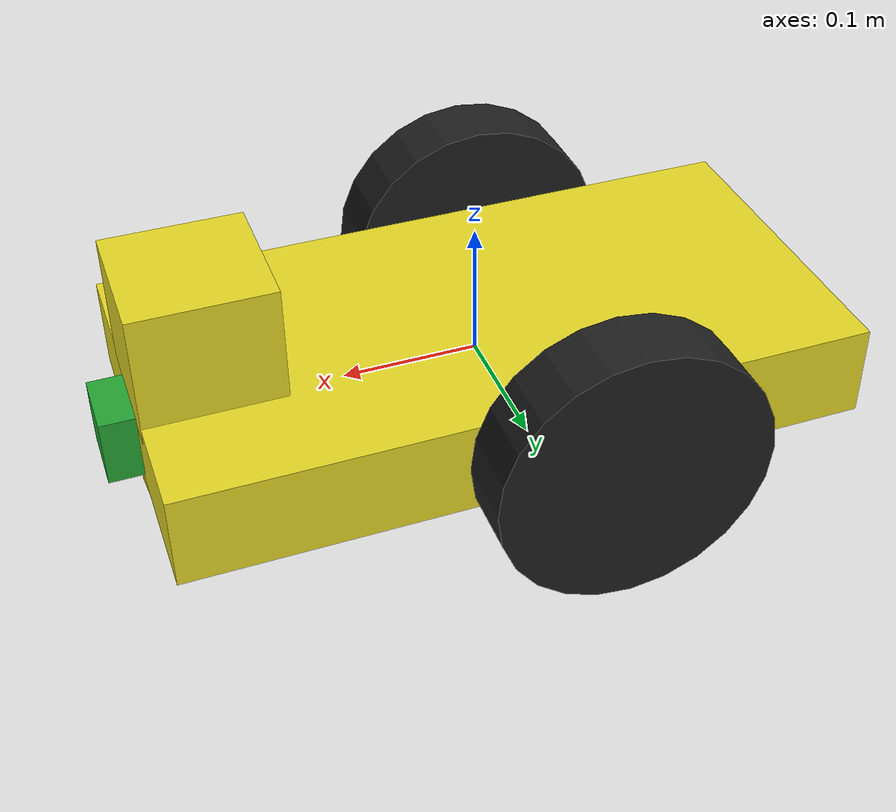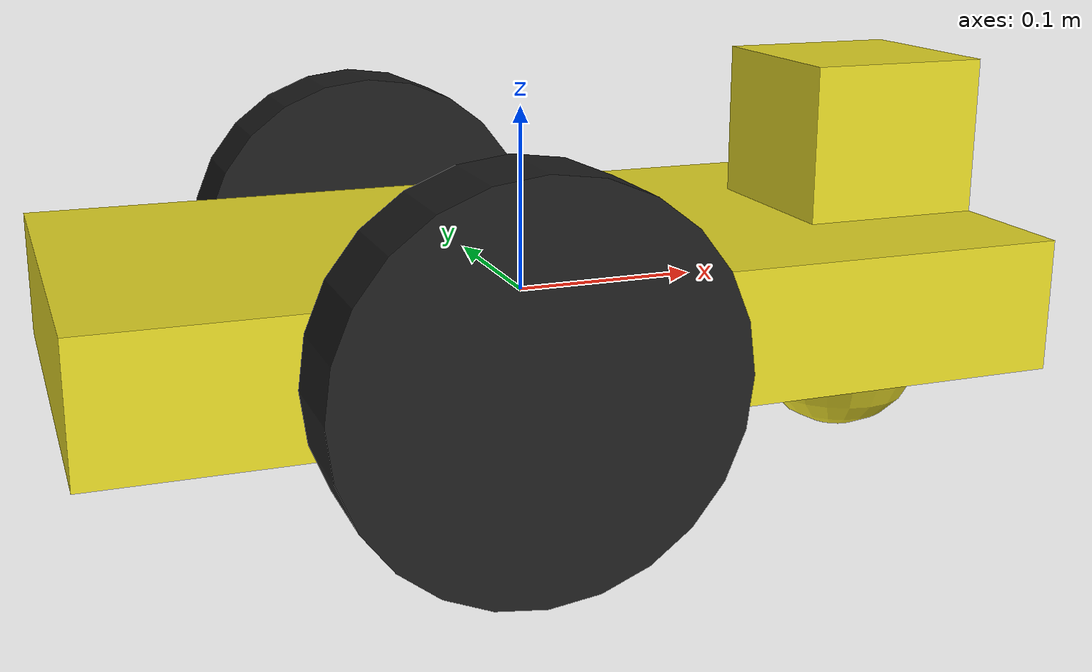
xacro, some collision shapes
<?xml version="1.0" ?>

<robot name="my_robot" xmlns:xacro="https://www.ros.org/wiki/xacro" >
  <!--Import Plugins-->
  <xacro:include filename="$(find my_robot)/urdf/my_robot.gazebo" />

  <!--Link: robot_footprint-->
  <link name="robot_footprint"></link>

  <!--Joint: robot_footprint & chassis-->
  <joint name="robot_footprint_joint" type="fixed">
    <origin xyz="0 0 0" rpy="0 0 0" />
    <parent link="robot_footprint"/>
    <child link="chassis" />
  </joint>

  <!--Link: chasiss-->
  <link name="chassis">
    <pose>0 0 0.1 0 0 0</pose>
    <!--inertial values-->
    <inertial>
      <mass value="15"/>
      <origin xyz="0 0 0" rpy="0 0 0"/>
      <inertia
          ixx="0.08425" ixy="0" ixz="0"
          iyy="0.318625" iyz="0"
          izz="0.390625"
      />
    </inertial>
    <!--collision values-->
    <collision name="chassis_collision">
      <geometry>
        <box size="0.5 0.25 0.07"/>
      </geometry>
    </collision>
    <!--visual values-->
    <visual name='chassis_visual'>
      <origin rpy="0 0 0" xyz="0 0 0"/>
      <geometry>
        <box size="0.5 0.25 0.07"/>
      </geometry>
    </visual>

    <!--front caster wheel-->
    <collision name="front_caster_collision">
      <origin xyz="0.35 0 -0.05" rpy=" 0 0 0"/>
      <geometry>
        <sphere radius="0.05"/>
      </geometry>
    </collision>

    <visual name="front_caster_visual">
      <origin xyz="0.2 0 -0.05" rpy=" 0 0 0"/>
      <geometry>
        <sphere radius="0.05"/>
      </geometry>
    </visual>
  </link>

  <!--Link: left_wheel-->
  <link name='left_wheel'>
    <inertial>
      <mass value="5"/>
      <origin xyz="0 0 0" rpy="0 1.5707 1.5707" />
      <!--inertial values-->
      <inertia
          ixx="0.01354166666" ixy="0" ixz="0"
          iyy="0.01354166666" iyz="0"
          izz="0.025"
      />
    </inertial>
    <!--collision values-->
    <collision name='left_wheel_collision'>
      <origin  xyz="0 0 0" rpy="0 1.5707 1.5707"/>
      <geometry>
        <cylinder length="0.05" radius="0.1"/>
      </geometry>
    </collision>
    <!--visual values-->
    <visual name='left_wheel_visual'>
      <origin xyz="0 0 0" rpy="0 1.5707 1.5707"/>
      <geometry>
        <cylinder length="0.05" radius="0.1"/>
      </geometry>
    </visual>

  </link>

  <!--Link: right_wheel-->
  <link name="right_wheel">
    <!--inertial values-->
    <inertial>
      <origin xyz="0 0 0" rpy="0 1.5707 1.5707" />
      <mass value="5"/>
      <inertia
          ixx="0.01354166666" ixy="0" ixz="0"
          iyy="0.01354166666" iyz="0"
          izz="0.025"
      />
    </inertial>
    <!--collision values-->
    <collision name="right_wheel_collision">
      <origin xyz="0 0 0" rpy="0 1.5707 1.5707"/>
      <geometry>
        <cylinder length="0.05" radius="0.1"/>
      </geometry>
    </collision>
    <!--visual values-->
    <visual name="right_wheel_visual">
      <origin xyz="0 0 0" rpy="0 1.5707 1.5707"/>
      <geometry>
        <cylinder length="0.05" radius="0.1"/>
      </geometry>
    </visual>
  </link>

  <!--Joint: left_wheel_hinge & chassis -->
  <joint name="left_wheel_hinge" type="continuous">
    <origin xyz="-0.05 0.15 0" rpy="0 0 0"/>
    <child link="left_wheel" />
    <parent link="chassis"/>
    <axis xyz="0 1 0" rpy="0 0 0" />
    <limit effort="10000" velocity="1000"/>
    <joint_properties damping="1.0" friction="1.0" />
  </joint>

  <!--Joint: right_wheel_hinge & chassis -->
  <joint name="right_wheel_hinge" type="continuous">
    <origin xyz="-0.05 -0.15 0" rpy="0 0 0"/>
    <child link="right_wheel" />
    <parent link="chassis"/>
    <axis rpy="0 0 0" xyz="0 1 0"/>
    <limit effort="10000" velocity="1000"/>
    <joint_properties damping="1.0" friction="1.0" />
  </joint>

  <!--Link: camera-->
  <link name='camera'>
    <!--inertial values-->
    <inertial>
      <origin xyz="0 0 0" rpy="0 0 0"/>
      <mass value="0.1"/>
      <box_inertia m="0.1" x="0.05" y="0.05" z="0.05"/>
      <inertia
          ixx="1e-6" ixy="0" ixz="0"
          iyy="1e-6" iyz="0"
          izz="1e-6"
      />
    </inertial>
    <!--visual values-->
    <visual name='camera_visual'>
      <origin xyz="0 0 0" rpy="0 0 0"/>
      <geometry>
        <box size=".05 .05 .05"/>
      </geometry>
    </visual>
    <!--collision values-->
    <collision name='camera_collision'>
      <origin xyz="0 0 0" rpy="0 0 0"/>
      <geometry>
        <box size=".05 .05 .05"/>
      </geometry>
    </collision>
  </link>

  <!--Joint: camera-->
  <joint type="fixed" name="camera_joint">
    <origin xyz="0.25 0 0" rpy="0 0 0"/>
    <child link="camera"/>
    <parent link="chassis"/>
    <axis xyz="0 1 0"/>
  </joint>

  <!--Links: hokuyo lidar -->
  <link name='hokuyo'>
    <!--inertial values-->
    <inertial>
      <origin xyz="0 0 0" rpy="0 0 0"/>
      <mass value="1e-5"/>
      <inertia
          ixx="1e-6" ixy="0" ixz="0"
          iyy="1e-6" iyz="0"
          izz="1e-6"
      />
    </inertial>
    <!--visual values-->
    <visual name='hokuyo_visual'>
      <origin xyz="0 0 0" rpy="0 0 0"/>
      <geometry>
        <mesh filename="package://my_robot/meshes/hokuyo.dae"/>
      </geometry>
    </visual>
    <!--collision values-->
    <collision name='hokuyo_collision'>
      <origin xyz="0 0 0" rpy="0 0 0"/>
      <geometry>
        <box size=".1 .1 .1"/>
      </geometry>
    </collision>
  </link>

  <!--Joint: hokuyo lidar & chassis-->
  <joint type="fixed" name="hokuyo_joint">
    <origin xyz="0.2 0 .07" rpy="0 0 0"/>
    <child link="hokuyo"/>
    <parent link="chassis"/>
    <axis xyz="0 1 0"/>
  </joint>

  <!--robot colours-->
  <gazebo reference="chassis">
    <material>Gazebo/Yellow</material>
  </gazebo>

  <gazebo reference="left_wheel">
    <material>Gazebo/Black</material>
  </gazebo>

  <gazebo reference="right_wheel">
    <material>Gazebo/Black</material>
  </gazebo>

  <gazebo reference="camera">
    <material>Gazebo/Green</material>
  </gazebo>

  <gazebo reference="hokuyo">
    <material>Gazebo/Yellow</material>
  </gazebo>

</robot>
